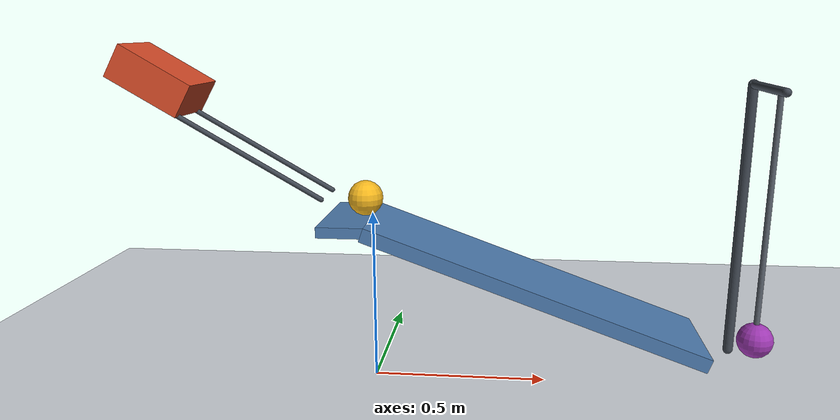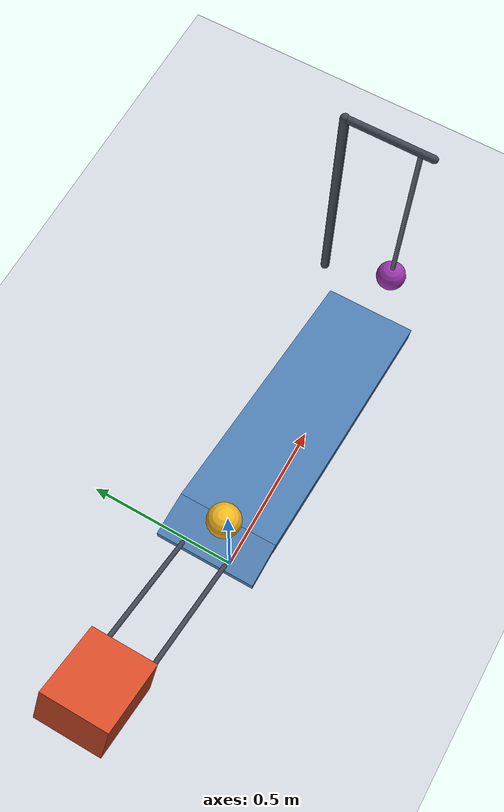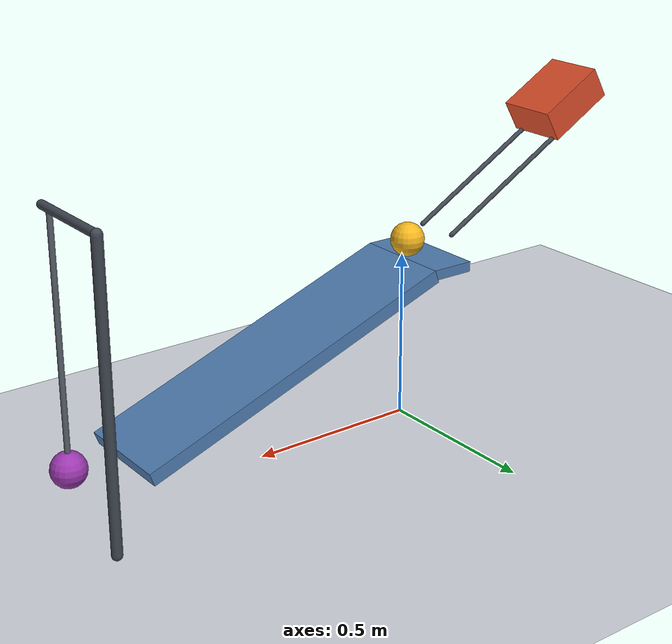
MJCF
<mujoco model="spring_cart_ramp_pendulum">
  <compiler angle="radian" autolimits="true" fusestatic="false"/>
  <option timestep="0.002" gravity="0 0 -9.81" integrator="implicitfast" solver="Newton" iterations="100" tolerance="1e-10"/>

  <visual>
    <headlight ambient="0.35 0.35 0.35" diffuse="0.65 0.65 0.65" specular="0.2 0.2 0.2"/>
    <map znear="0.01" zfar="20"/>
  </visual>

  <!--
    Sliding friction is 0.68 throughout.
    The additional friction coefficients are torsional and rolling friction.
    Contact damping ratio 0.690107 nominally corresponds to restitution 0.05.
  -->

  <worldbody>
    <light name="main_light" pos="0 -2 4" dir="0 0.4 -1" diffuse="0.8 0.8 0.8"/>
    <camera name="overview" pos="0.3 -3.6 1.9" xyaxes="1 0 0 0 0.4 0.916515" fovy="42"/>

    <geom name="floor" type="plane" pos="0 0 0" size="5 5 0.1" friction="0.68 0.005 0.008" condim="6" solref="0.006 0.690107" solimp="0.99 0.99 0.001" rgba="0.82 0.84 0.87 1"/>

    <!-- Noncolliding guide rails: the slide joint provides the actual constraint. -->
    <geom name="cart1_rail_left" type="capsule" fromto="-0.616576767 -0.065 0.828718873 -0.131602540 -0.065 0.548718873" size="0.007" contype="0" conaffinity="0" rgba="0.25 0.28 0.32 1"/>
    <geom name="cart1_rail_right" type="capsule" fromto="-0.616576767 0.065 0.828718873 -0.131602540 0.065 0.548718873" size="0.007" contype="0" conaffinity="0" rgba="0.25 0.28 0.32 1"/>

    <!-- The ramp's top surface is 1.00 m by 0.30 m, inclined downward at 20 degrees. -->
    <!-- Its high edge is (0, 0, 0.492020143); its low edge is (0.939692621, 0, 0.15). -->
    <body name="ramp1" pos="0 0 0">
      <geom name="ramp1_surface" type="box" pos="0.463005908 0 0.302216219" quat="0.984807753 0 0.173648178 0" size="0.50 0.15 0.02" friction="0.68 0.005 0.006" condim="6" solref="0.006 0.690107" solimp="0.99 0.99 0.001" rgba="0.30 0.48 0.68 1"/>
      <!-- A level entrance ledge keeps the ball stationary until the cart arrives. -->
      <geom name="ramp1_entrance" type="box" pos="-0.065 0 0.477020143" size="0.065 0.15 0.015" friction="0.68 0.005 0.006" condim="6" solref="0.006 0.690107" solimp="0.99 0.99 0.001" rgba="0.30 0.48 0.68 1"/>
    </body>

    <!--
      The cart guide descends at 30 degrees.
      At q=0 the axial spring is compressed 0.20 m.
      The front face first reaches the initially stationary ball at q=0.50 m.
    -->
    <body name="cart1" pos="-0.591576767 0 0.872020143" quat="0.965925826 0 0.258819045 0">
      <joint name="cart1_slide" type="slide" axis="1 0 0" limited="true" range="0 0.56" stiffness="18" springref="0.20" damping="0.20"/>
      <geom name="cart1_chassis" type="box" size="0.11 0.09 0.05" mass="0.50" friction="0.68 0.005 0.006" condim="6" solref="0.006 0.690107" solimp="0.99 0.99 0.001" rgba="0.85 0.30 0.16 1"/>
    </body>

    <body name="ball1" pos="-0.02 0 0.542020143">
      <freejoint name="ball1_free"/>
      <geom name="ball1_sphere" type="sphere" size="0.05" mass="0.20" friction="0.68 0.005 0.006" condim="6" solref="0.006 0.690107" solimp="0.99 0.99 0.001" rgba="0.96 0.72 0.12 1"/>
    </body>

    <!-- The bob's near surface is 0.10 m horizontally beyond the ramp's low edge. -->
    <body name="pendulum1" pos="1.089692621 0 0.85">
      <joint name="pendulum1_hinge" type="hinge" axis="0 1 0" damping="0.04"/>
      <geom name="pendulum1_rod" type="capsule" fromto="0 0 0 0 0 -0.65" size="0.008" mass="0.02" friction="0.68 0.005 0.006" condim="6" solref="0.006 0.690107" solimp="0.99 0.99 0.001" rgba="0.35 0.38 0.42 1"/>
      <geom name="pendulum1_bob" type="sphere" pos="0 0 -0.70" size="0.05" mass="0.20" friction="0.68 0.005 0.006" condim="6" solref="0.006 0.690107" solimp="0.99 0.99 0.001" rgba="0.62 0.22 0.70 1"/>
    </body>

    <geom name="pendulum1_support_post" type="capsule" fromto="1.089692621 0.24 0.015 1.089692621 0.24 0.85" size="0.015" contype="0" conaffinity="0" rgba="0.25 0.28 0.32 1"/>
    <geom name="pendulum1_support_crossbar" type="capsule" fromto="1.089692621 -0.04 0.85 1.089692621 0.24 0.85" size="0.012" contype="0" conaffinity="0" rgba="0.25 0.28 0.32 1"/>
  </worldbody>

  <contact>
    <!-- The constrained cart runs on its guide, not on the ball's entrance ledge. -->
    <exclude body1="cart1" body2="ramp1"/>
  </contact>

  <keyframe>
    <!-- Configuration order: cart slide, ball free joint, pendulum hinge. -->
    <key name="start" qpos="0 -0.02 0 0.542020143 1 0 0 0 0" qvel="0 0 0 0 0 0 0 0"/>
  </keyframe>
</mujoco>
